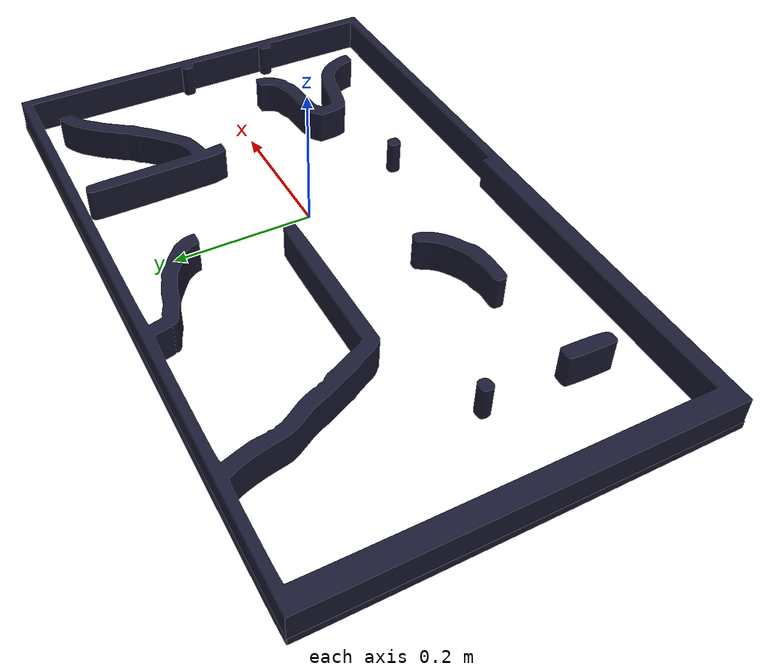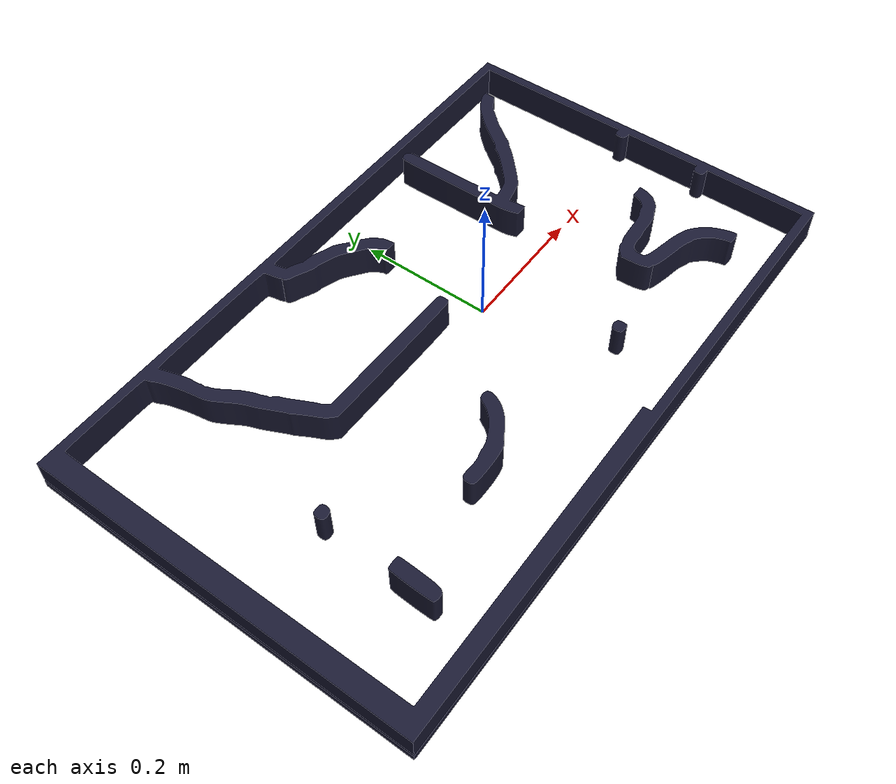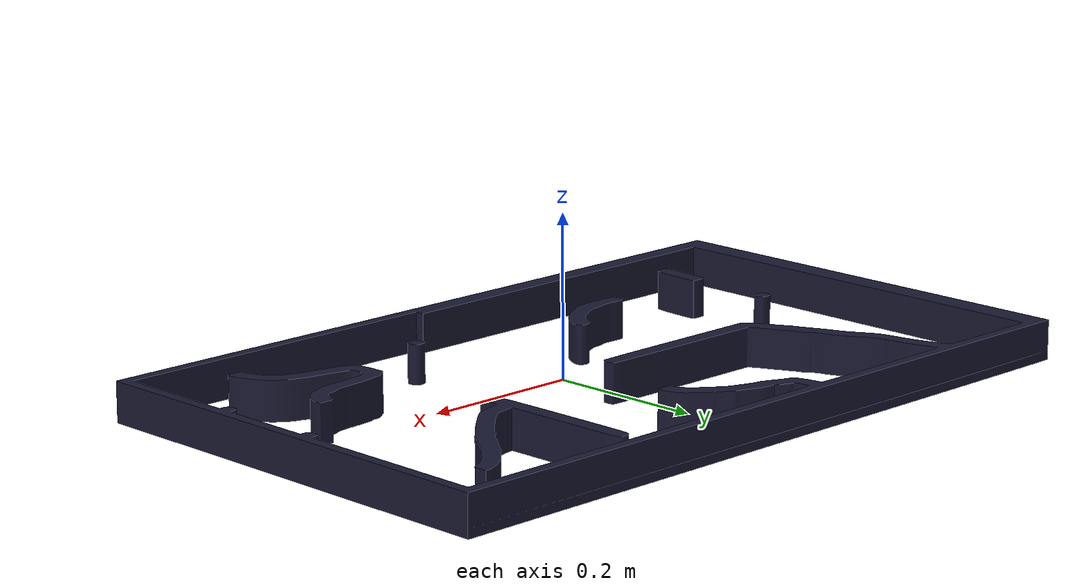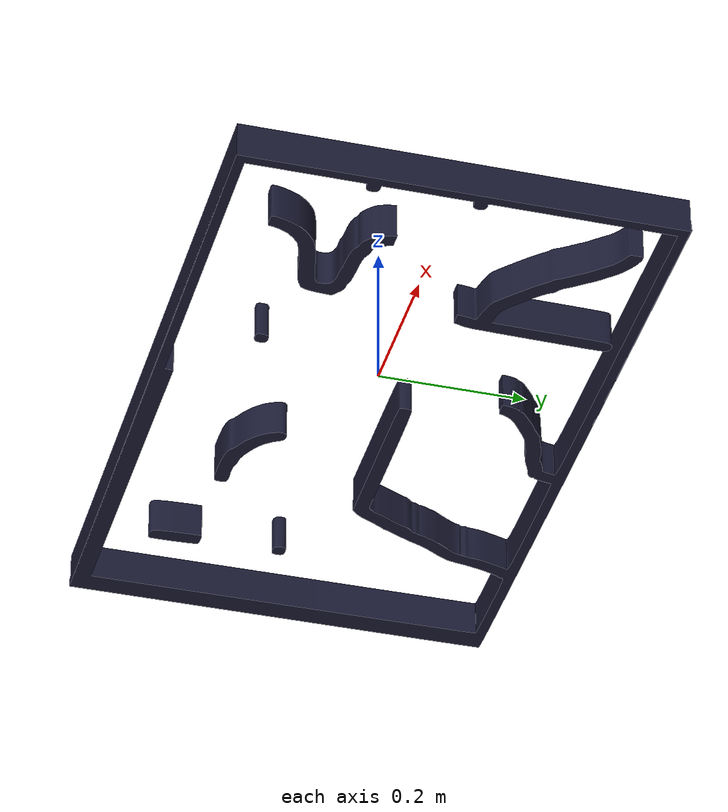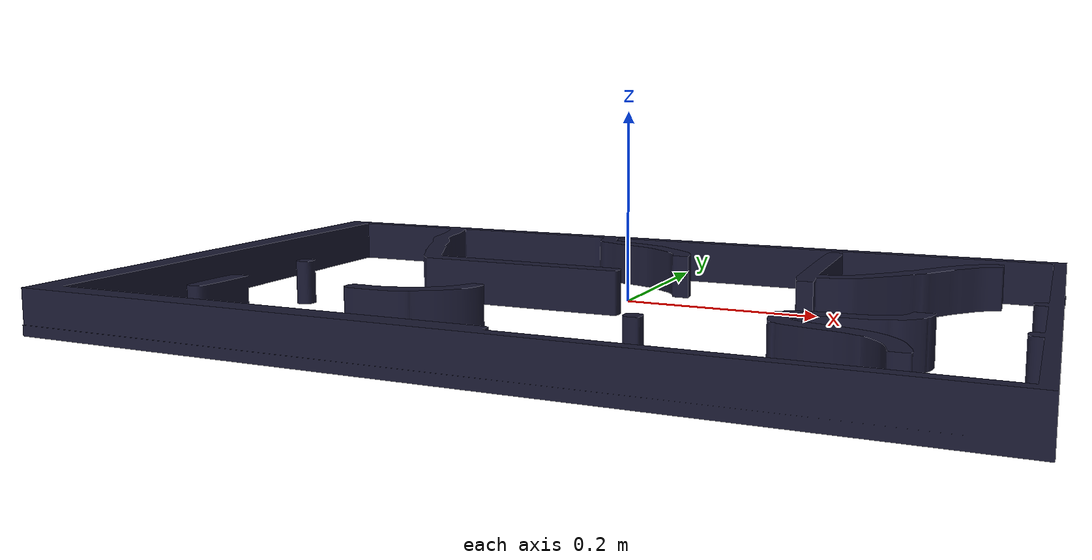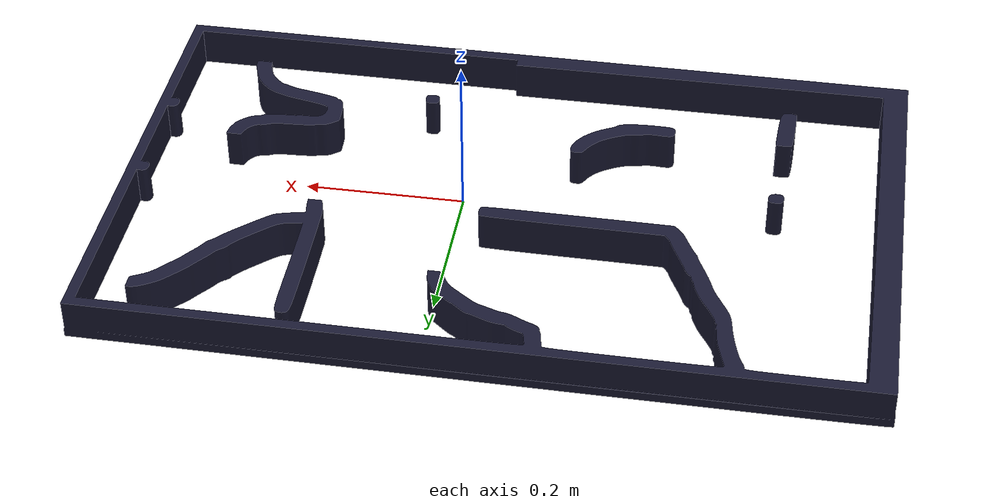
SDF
<?xml version="1.0" ?>
<sdf version="1.5">
  <model name="mapa">
  <pose>0.0 0.0 0.0 0.0 0.0 0.0</pose>

    <link name="base_link">
      <inertial>
        <pose>-0.064 0 0.048 0 0 0</pose>
        <inertia>
          <ixx>4.2111447e-02</ixx>
          <ixy>0</ixy>
          <ixz>0</ixz>
          <iyy>4.2111447e-02</iyy>
          <iyz>0</iyz>
          <izz>7.5254874e-02</izz>
        </inertia>
        <mass>1.3729096e+00</mass>
      </inertial>

      <collision name="base_collision">
        <pose>-0.064 0 0.048 0 0 0</pose>
        <geometry>
          <mesh>
            <uri>model://mapa/meshes/mapa.stl</uri>
            <scale>0.001 0.001 0.001</scale>
          </mesh>
        </geometry>
      </collision>

      <visual name="base_visual">
        <pose>-0.064 0 0 0 0 0</pose>
        <geometry>
          <mesh>
            <uri>model://mapa/meshes/mapa.stl</uri>
            <scale>0.001 0.001 0.001</scale>
          </mesh>
        </geometry>
        <material> <!-- map material -->
          <ambient>0.1 0.1 0.1 1</ambient>
          <diffuse>0.1 0.1 0.2 1</diffuse>
          <specular>0 0 0 0</specular>
          <emissive>0 0 0 1</emissive>
        </material> <!-- End map material -->
      </visual>
    </link>
  </model>
</sdf>
